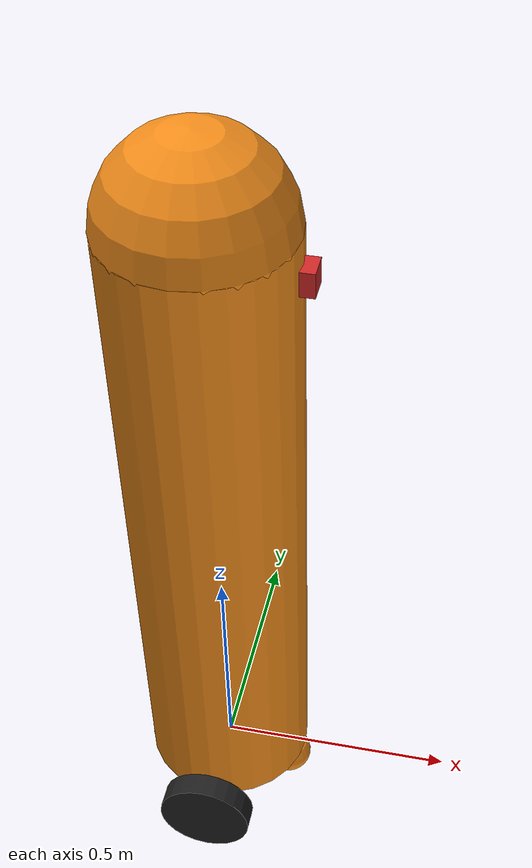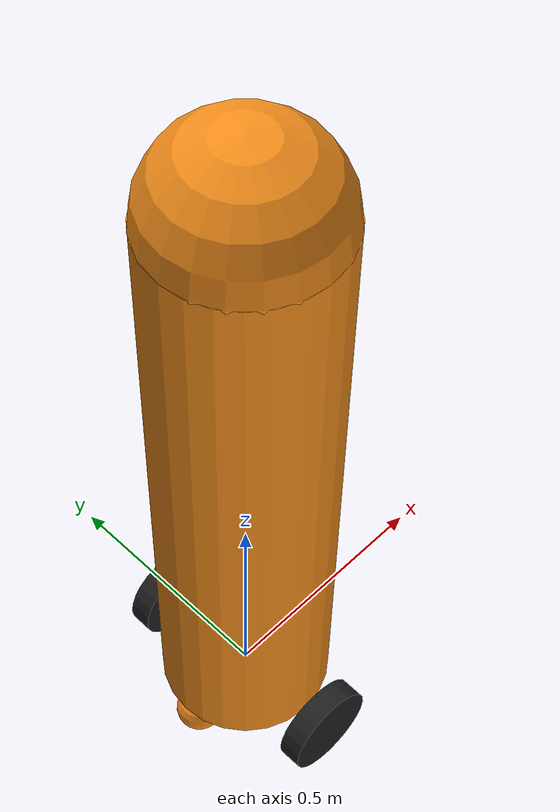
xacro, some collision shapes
<?xml version='1.0'?>

<robot name="museum_nav_bot"
  xmlns:xacro="http://www.ros.org/wiki/xacro">

  <xacro:include filename="$(find museum_nav_bot)/urdf/museum_nav_bot.gazebo" />

  <link name="robot_footprint"></link>

  <joint name="robot_footprint_joint" type="fixed">
    <origin xyz="0 0 0" rpy="0 0 0" />
    <parent link="robot_footprint"/>
    <child link="chassis" />
  </joint>

  <link name='chassis'>

    <pose>0 0 0.1 0 0 0</pose>

    <inertial>
      <mass value="5.0"/>
      <origin xyz="0.0 0 0" rpy=" 0 0 0"/>
      <inertia ixx="0.1" ixy="0" ixz="0" iyy="0.1" iyz="0" izz="0.1" />
    </inertial>

    <collision name='collision'>
      <origin xyz="0 0 0" rpy=" 0 0 0"/>
      <geometry>
        <box size=".28 .28 .1"/>
      </geometry>
    </collision>

    <visual name="chassis_visual">
      <origin xyz="0 0 0.7" rpy=" 0 0 0" />
      <geometry>
        <cylinder radius="0.18" length="1.4" />
      </geometry>
    </visual>
    <collision name="chassis_head">
      <origin xyz="0 0 1.4" rpy=" 0 0 0" />
      <geometry>
        <sphere radius="0.18" />
      </geometry>
    </collision>
    <visual name="chassis_head_visual">
      <origin xyz="0 0 1.4" rpy=" 0 0 0" />
      <geometry>
        <sphere radius="0.18" />
      </geometry>
    </visual>
  </link>

  <gazebo reference="chassis">
    <material>Gazebo/Orange</material>
  </gazebo>

  <joint name="back_caster_joint" type="fixed">
    <parent link="chassis"/>
    <child link="back_caster"/>
    <origin xyz="-0.14 0 -0.05" rpy="0.0 0.0 0.0"/>
  </joint>

  <link name="back_caster">
    <inertial>
      <mass value="0.5"/>
      <origin xyz="0.0 0 0" rpy=" 0 0 0"/>
      <inertia ixx="0.1" ixy="0" ixz="0" iyy="0.1" iyz="0" izz="0.1" />
    </inertial>

    <collision name='back_caster_collision'>
      <origin xyz="0 0 0" rpy="0 0 0"/>
      <geometry>
        <sphere radius="0.05"/>
      </geometry>
    </collision>

    <visual name='back_caster_visual'>
      <origin xyz="0 0 0" rpy=" 0 0 0"/>
      <geometry>
        <sphere radius="0.05"/>
      </geometry>
    </visual>
  </link>

  <joint name="front_caster_joint" type="fixed">
    <parent link="chassis"/>
    <child link="front_caster"/>
    <origin xyz="0.14 0 -0.05" rpy="0.0 0.0 0.0"/>
  </joint>

  <link name="front_caster">

    <inertial>
      <mass value="0.5"/>
      <origin xyz="0.0 0 0" rpy=" 0 0 0"/>
      <inertia ixx="0.1" ixy="0" ixz="0" iyy="0.1" iyz="0" izz="0.1" />
    </inertial>

    <collision name='front_caster_collision'>
      <origin xyz="0 0 0" rpy="0 0 0"/>
      <geometry>
        <sphere radius="0.05"/>
      </geometry>
    </collision>

    <visual name='front_caster_visual'>
      <origin xyz="0 0 0" rpy="0 0 0"/>
      <geometry>
        <sphere radius="0.05"/>
      </geometry>
    </visual>
  </link>

  <gazebo reference="front_caster">
    <mu1>0.0</mu1>
    <mu2>0.0</mu2>
    <material>Gazebo/Orange</material>
  </gazebo>

  <gazebo reference="back_caster">
    <mu1>0.0</mu1>
    <mu2>0.0</mu2>
    <material>Gazebo/Orange</material>
  </gazebo>

  <joint type="continuous" name="left_wheel_hinge">
    <origin xyz="0 .23 0" rpy="0 0 0"/>
    <child link="left_wheel"/>
    <parent link="chassis"/>
    <axis xyz="0 1 0" rpy="0 0 0"/>
    <limit effort="10000" velocity="1000"/>
    <dynamics damping="1.0" friction="1.0"/>
  </joint>

  <link name="left_wheel">
    <inertial>
      <origin xyz="0.0 0.0 0.0" rpy="1.57079632679 0.0 0"/>
      <mass value="0.8"/>
      <inertia ixx="0.1" ixy="0.0" ixz="0.0" iyy="0.1" iyz="0.0" izz="0.1"/>
    </inertial>

    <visual name="left_wheel_visual">
      <origin xyz="0.0 0.0 0.0" rpy="1.57079632679 0.0 0"/>
      <geometry>
        <cylinder radius="0.1" length="0.05"/>
      </geometry>
    </visual>

    <collision name="left_wheel_collision">
      <origin xyz="0.0 0.0 0.0" rpy="1.57079632679 0.0 0"/>
      <geometry>
        <cylinder radius="0.1" length="0.05"/>
      </geometry>
    </collision>
  </link>

  <joint type="continuous" name="right_wheel_hinge">
    <origin xyz="0 -.23 0" rpy="0 0 0"/>
    <child link="right_wheel"/>
    <parent link="chassis"/>
    <axis xyz="0 1 0" rpy="0 0 0"/>
    <limit effort="10000" velocity="1000"/>
    <dynamics damping="1.0" friction="1.0"/>
  </joint>

  <link name="right_wheel">
    <inertial>
      <origin xyz="0.0 0.0 0.0" rpy="1.57079632679 0.0 0"/>
      <mass value="0.8"/>
      <inertia ixx="0.1" ixy="0.0" ixz="0.0" iyy="0.1" iyz="0.0" izz="0.1"/>
    </inertial>

    <visual name="right_wheel_visual">
      <origin xyz="0.0 0.0 0.0" rpy="1.57079632679 0.0 0"/>
      <geometry>
        <cylinder radius="0.1" length="0.05"/>
      </geometry>
    </visual>

    <collision name="right_wheel_collision">
      <origin xyz="0.0 0.0 0.0" rpy="1.57079632679 0.0 0"/>
      <geometry>
        <cylinder radius="0.1" length="0.05"/>
      </geometry>
    </collision>
  </link>

  <gazebo reference="left_wheel">
    <material>Gazebo/Black</material>
  </gazebo>

  <gazebo reference="right_wheel">
    <material>Gazebo/Black</material>
  </gazebo>

  <joint name="camera_joint" type="fixed">
    <parent link="chassis" />
    <child link="camera" />
    <origin xyz="0.18 0.0 1.3" rpy="0.0 0.0 0.0" />
  </joint>
  <link name="camera">
    <inertial>
      <origin xyz="0.0 0.0 0.025" rpy="0.0 0.0 0.0"/>
      <mass value="0.1"/>
      <inertia ixx="1e-6" ixy="0.0" ixz="0.0" iyy="1e-6" iyz="0.0" izz="1e-6"/>
    </inertial>

    <visual name="camera_visual">
      <origin xyz="0.0 0.0 0.025" rpy="0.0 0.0 0.0"/>
      <geometry>
        <box size="0.05 0.05 0.05"/>
      </geometry>
    </visual>

    <collision name="camera_collision">
      <origin xyz="0.0 0.0 0.025" rpy="0.0 0.0 0.0"/>
      <geometry>
        <box size="0.05 0.05 0.05"/>
      </geometry>
    </collision>
  </link>

  <gazebo reference="camera">
    <material>Gazebo/Red</material>
  </gazebo>

  <joint name="hokuyo_joint" type="fixed">
    <parent link="chassis" />
    <child link="hokuyo" />
    <origin xyz="0.0 0.0 0.15" rpy="0.0 0.0 0.0" />
  </joint>

  <link name="hokuyo">
    <inertial>
      <origin xyz="0.0 0.0 0.0" rpy="0.0 0.0 0.0"/>
      <mass value="1e-5"/>
      <inertia ixx="1e-6" ixy="0.0" ixz="0.0" iyy="1e-6" iyz="0.0" izz="1e-6"/>
    </inertial>

    <visual name="hokuyo_visual">
      <origin xyz="0.0 0.0 0.0" rpy="0.0 0.0 0.0"/>
      <geometry>
        <mesh filename="package://museum_nav_bot/meshes/hokuyo.dae"/>
      </geometry>
    </visual>

    <collision name="hokuyo_collision">
      <origin xyz="0.0 0.0 0.0" rpy="0.0 0.0 0.0"/>
      <geometry>
        <box size="0.05 0.05 0.05"/>
      </geometry>
    </collision>
  </link>

  <joint name="imu_joint" type="fixed">
    <parent link="chassis"/>
    <child link="imu_link"/>
    <origin xyz="0 0 0" rpy="0 0 0"/>
  </joint>

  <link name="imu_link"/>

</robot>
